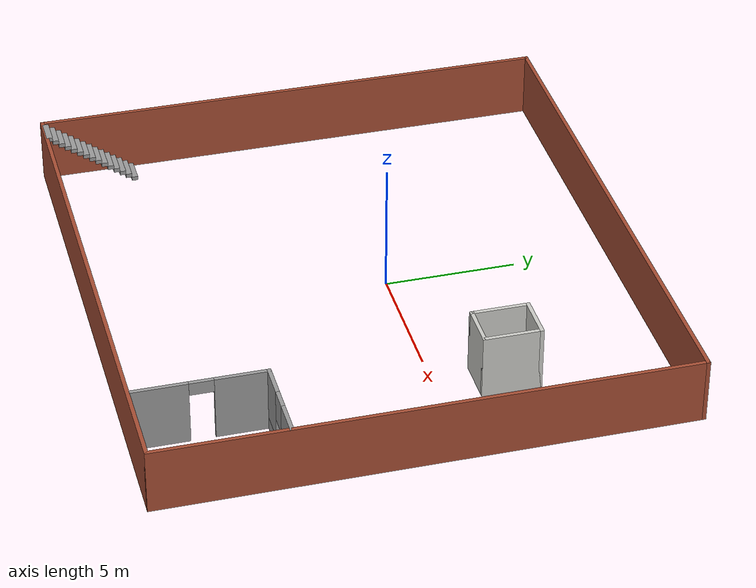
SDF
<?xml version='1.0'?>
<sdf version='1.6'>
  <model name='kevin_2'>
    <pose frame=''>0.096778 -1.24129 0 0 -0 0</pose>
    <link name='Stairs_1'>
      <visual name='Stairs_1_Visual_0'>
        <pose frame=''>-9.91319 -6.55547 0.083333 0 -0 0</pose>
        <geometry>
          <box>
            <size>1 0.233333 0.166667</size>
          </box>
        </geometry>
        <material>
          <script>
            <uri>file://media/materials/scripts/gazebo.material</uri>
            <name>Gazebo/Grey</name>
          </script>
          <ambient>1 1 1 1</ambient>
        </material>
        <meta>
          <layer>0</layer>
        </meta>
      </visual>
      <collision name='Stairs_1_Collision_0'>
        <geometry>
          <box>
            <size>1 0.233333 0.166667</size>
          </box>
        </geometry>
        <pose frame=''>-9.91319 -6.55547 0.083333 0 -0 0</pose>
      </collision>
      <visual name='Stairs_1_Visual_1'>
        <pose frame=''>-9.91319 -6.78881 0.25 0 -0 0</pose>
        <geometry>
          <box>
            <size>1 0.233333 0.166667</size>
          </box>
        </geometry>
        <material>
          <script>
            <uri>file://media/materials/scripts/gazebo.material</uri>
            <name>Gazebo/Grey</name>
          </script>
          <ambient>1 1 1 1</ambient>
        </material>
        <meta>
          <layer>0</layer>
        </meta>
      </visual>
      <collision name='Stairs_1_Collision_1'>
        <geometry>
          <box>
            <size>1 0.233333 0.166667</size>
          </box>
        </geometry>
        <pose frame=''>-9.91319 -6.78881 0.25 0 -0 0</pose>
      </collision>
      <visual name='Stairs_1_Visual_2'>
        <pose frame=''>-9.91319 -7.02214 0.416667 0 -0 0</pose>
        <geometry>
          <box>
            <size>1 0.233333 0.166667</size>
          </box>
        </geometry>
        <material>
          <script>
            <uri>file://media/materials/scripts/gazebo.material</uri>
            <name>Gazebo/Grey</name>
          </script>
          <ambient>1 1 1 1</ambient>
        </material>
        <meta>
          <layer>0</layer>
        </meta>
      </visual>
      <collision name='Stairs_1_Collision_2'>
        <geometry>
          <box>
            <size>1 0.233333 0.166667</size>
          </box>
        </geometry>
        <pose frame=''>-9.91319 -7.02214 0.416667 0 -0 0</pose>
      </collision>
      <visual name='Stairs_1_Visual_3'>
        <pose frame=''>-9.91319 -7.25547 0.583333 0 -0 0</pose>
        <geometry>
          <box>
            <size>1 0.233333 0.166667</size>
          </box>
        </geometry>
        <material>
          <script>
            <uri>file://media/materials/scripts/gazebo.material</uri>
            <name>Gazebo/Grey</name>
          </script>
          <ambient>1 1 1 1</ambient>
        </material>
        <meta>
          <layer>0</layer>
        </meta>
      </visual>
      <collision name='Stairs_1_Collision_3'>
        <geometry>
          <box>
            <size>1 0.233333 0.166667</size>
          </box>
        </geometry>
        <pose frame=''>-9.91319 -7.25547 0.583333 0 -0 0</pose>
      </collision>
      <visual name='Stairs_1_Visual_4'>
        <pose frame=''>-9.91319 -7.48881 0.75 0 -0 0</pose>
        <geometry>
          <box>
            <size>1 0.233333 0.166667</size>
          </box>
        </geometry>
        <material>
          <script>
            <uri>file://media/materials/scripts/gazebo.material</uri>
            <name>Gazebo/Grey</name>
          </script>
          <ambient>1 1 1 1</ambient>
        </material>
        <meta>
          <layer>0</layer>
        </meta>
      </visual>
      <collision name='Stairs_1_Collision_4'>
        <geometry>
          <box>
            <size>1 0.233333 0.166667</size>
          </box>
        </geometry>
        <pose frame=''>-9.91319 -7.48881 0.75 0 -0 0</pose>
      </collision>
      <visual name='Stairs_1_Visual_5'>
        <pose frame=''>-9.91319 -7.72214 0.916667 0 -0 0</pose>
        <geometry>
          <box>
            <size>1 0.233333 0.166667</size>
          </box>
        </geometry>
        <material>
          <script>
            <uri>file://media/materials/scripts/gazebo.material</uri>
            <name>Gazebo/Grey</name>
          </script>
          <ambient>1 1 1 1</ambient>
        </material>
        <meta>
          <layer>0</layer>
        </meta>
      </visual>
      <collision name='Stairs_1_Collision_5'>
        <geometry>
          <box>
            <size>1 0.233333 0.166667</size>
          </box>
        </geometry>
        <pose frame=''>-9.91319 -7.72214 0.916667 0 -0 0</pose>
      </collision>
      <visual name='Stairs_1_Visual_6'>
        <pose frame=''>-9.91319 -7.95547 1.08333 0 -0 0</pose>
        <geometry>
          <box>
            <size>1 0.233333 0.166667</size>
          </box>
        </geometry>
        <material>
          <script>
            <uri>file://media/materials/scripts/gazebo.material</uri>
            <name>Gazebo/Grey</name>
          </script>
          <ambient>1 1 1 1</ambient>
        </material>
        <meta>
          <layer>0</layer>
        </meta>
      </visual>
      <collision name='Stairs_1_Collision_6'>
        <geometry>
          <box>
            <size>1 0.233333 0.166667</size>
          </box>
        </geometry>
        <pose frame=''>-9.91319 -7.95547 1.08333 0 -0 0</pose>
      </collision>
      <visual name='Stairs_1_Visual_7'>
        <pose frame=''>-9.91319 -8.18881 1.25 0 -0 0</pose>
        <geometry>
          <box>
            <size>1 0.233333 0.166667</size>
          </box>
        </geometry>
        <material>
          <script>
            <uri>file://media/materials/scripts/gazebo.material</uri>
            <name>Gazebo/Grey</name>
          </script>
          <ambient>1 1 1 1</ambient>
        </material>
        <meta>
          <layer>0</layer>
        </meta>
      </visual>
      <collision name='Stairs_1_Collision_7'>
        <geometry>
          <box>
            <size>1 0.233333 0.166667</size>
          </box>
        </geometry>
        <pose frame=''>-9.91319 -8.18881 1.25 0 -0 0</pose>
      </collision>
      <visual name='Stairs_1_Visual_8'>
        <pose frame=''>-9.91319 -8.42214 1.41667 0 -0 0</pose>
        <geometry>
          <box>
            <size>1 0.233333 0.166667</size>
          </box>
        </geometry>
        <material>
          <script>
            <uri>file://media/materials/scripts/gazebo.material</uri>
            <name>Gazebo/Grey</name>
          </script>
          <ambient>1 1 1 1</ambient>
        </material>
        <meta>
          <layer>0</layer>
        </meta>
      </visual>
      <collision name='Stairs_1_Collision_8'>
        <geometry>
          <box>
            <size>1 0.233333 0.166667</size>
          </box>
        </geometry>
        <pose frame=''>-9.91319 -8.42214 1.41667 0 -0 0</pose>
      </collision>
      <visual name='Stairs_1_Visual_9'>
        <pose frame=''>-9.91319 -8.65547 1.58333 0 -0 0</pose>
        <geometry>
          <box>
            <size>1 0.233333 0.166667</size>
          </box>
        </geometry>
        <material>
          <script>
            <uri>file://media/materials/scripts/gazebo.material</uri>
            <name>Gazebo/Grey</name>
          </script>
          <ambient>1 1 1 1</ambient>
        </material>
        <meta>
          <layer>0</layer>
        </meta>
      </visual>
      <collision name='Stairs_1_Collision_9'>
        <geometry>
          <box>
            <size>1 0.233333 0.166667</size>
          </box>
        </geometry>
        <pose frame=''>-9.91319 -8.65547 1.58333 0 -0 0</pose>
      </collision>
      <visual name='Stairs_1_Visual_10'>
        <pose frame=''>-9.91319 -8.88881 1.75 0 -0 0</pose>
        <geometry>
          <box>
            <size>1 0.233333 0.166667</size>
          </box>
        </geometry>
        <material>
          <script>
            <uri>file://media/materials/scripts/gazebo.material</uri>
            <name>Gazebo/Grey</name>
          </script>
          <ambient>1 1 1 1</ambient>
        </material>
        <meta>
          <layer>0</layer>
        </meta>
      </visual>
      <collision name='Stairs_1_Collision_10'>
        <geometry>
          <box>
            <size>1 0.233333 0.166667</size>
          </box>
        </geometry>
        <pose frame=''>-9.91319 -8.88881 1.75 0 -0 0</pose>
      </collision>
      <visual name='Stairs_1_Visual_11'>
        <pose frame=''>-9.91319 -9.12214 1.91667 0 -0 0</pose>
        <geometry>
          <box>
            <size>1 0.233333 0.166667</size>
          </box>
        </geometry>
        <material>
          <script>
            <uri>file://media/materials/scripts/gazebo.material</uri>
            <name>Gazebo/Grey</name>
          </script>
          <ambient>1 1 1 1</ambient>
        </material>
        <meta>
          <layer>0</layer>
        </meta>
      </visual>
      <collision name='Stairs_1_Collision_11'>
        <geometry>
          <box>
            <size>1 0.233333 0.166667</size>
          </box>
        </geometry>
        <pose frame=''>-9.91319 -9.12214 1.91667 0 -0 0</pose>
      </collision>
      <visual name='Stairs_1_Visual_12'>
        <pose frame=''>-9.91319 -9.35547 2.08333 0 -0 0</pose>
        <geometry>
          <box>
            <size>1 0.233333 0.166667</size>
          </box>
        </geometry>
        <material>
          <script>
            <uri>file://media/materials/scripts/gazebo.material</uri>
            <name>Gazebo/Grey</name>
          </script>
          <ambient>1 1 1 1</ambient>
        </material>
        <meta>
          <layer>0</layer>
        </meta>
      </visual>
      <collision name='Stairs_1_Collision_12'>
        <geometry>
          <box>
            <size>1 0.233333 0.166667</size>
          </box>
        </geometry>
        <pose frame=''>-9.91319 -9.35547 2.08333 0 -0 0</pose>
      </collision>
      <visual name='Stairs_1_Visual_13'>
        <pose frame=''>-9.91319 -9.58881 2.25 0 -0 0</pose>
        <geometry>
          <box>
            <size>1 0.233333 0.166667</size>
          </box>
        </geometry>
        <material>
          <script>
            <uri>file://media/materials/scripts/gazebo.material</uri>
            <name>Gazebo/Grey</name>
          </script>
          <ambient>1 1 1 1</ambient>
        </material>
        <meta>
          <layer>0</layer>
        </meta>
      </visual>
      <collision name='Stairs_1_Collision_13'>
        <geometry>
          <box>
            <size>1 0.233333 0.166667</size>
          </box>
        </geometry>
        <pose frame=''>-9.91319 -9.58881 2.25 0 -0 0</pose>
      </collision>
      <visual name='Stairs_1_Visual_14'>
        <pose frame=''>-9.91319 -9.82214 2.41667 0 -0 0</pose>
        <geometry>
          <box>
            <size>1 0.233333 0.166667</size>
          </box>
        </geometry>
        <material>
          <script>
            <uri>file://media/materials/scripts/gazebo.material</uri>
            <name>Gazebo/Grey</name>
          </script>
          <ambient>1 1 1 1</ambient>
        </material>
        <meta>
          <layer>0</layer>
        </meta>
      </visual>
      <collision name='Stairs_1_Collision_14'>
        <geometry>
          <box>
            <size>1 0.233333 0.166667</size>
          </box>
        </geometry>
        <pose frame=''>-9.91319 -9.82214 2.41667 0 -0 0</pose>
      </collision>
    </link>
    <link name='Wall_11'>
      <collision name='Wall_11_Collision'>
        <geometry>
          <box>
            <size>20 0.15 2.5</size>
          </box>
        </geometry>
        <pose frame=''>0 0 1.25 0 -0 0</pose>
      </collision>
      <visual name='Wall_11_Visual'>
        <pose frame=''>0 0 1.25 0 -0 0</pose>
        <geometry>
          <box>
            <size>20 0.15 2.5</size>
          </box>
        </geometry>
        <material>
          <script>
            <uri>file://media/materials/scripts/gazebo.material</uri>
            <name>Gazebo/Bricks</name>
          </script>
          <ambient>1 1 1 1</ambient>
        </material>
        <meta>
          <layer>0</layer>
        </meta>
      </visual>
      <pose frame=''>-10.55 0 0 0 0 -1.5708</pose>
    </link>
    <link name='Wall_12'>
      <collision name='Wall_12_Collision'>
        <geometry>
          <box>
            <size>21.25 0.15 2.5</size>
          </box>
        </geometry>
        <pose frame=''>0 0 1.25 0 -0 0</pose>
      </collision>
      <visual name='Wall_12_Visual'>
        <pose frame=''>0 0 1.25 0 -0 0</pose>
        <geometry>
          <box>
            <size>21.25 0.15 2.5</size>
          </box>
        </geometry>
        <material>
          <script>
            <uri>file://media/materials/scripts/gazebo.material</uri>
            <name>Gazebo/Bricks</name>
          </script>
          <ambient>1 1 1 1</ambient>
        </material>
        <meta>
          <layer>0</layer>
        </meta>
      </visual>
      <pose frame=''>0 -9.925 0 0 -0 0</pose>
    </link>
    <link name='Wall_13'>
      <collision name='Wall_13_Collision'>
        <geometry>
          <box>
            <size>20 0.15 2.5</size>
          </box>
        </geometry>
        <pose frame=''>0 0 1.25 0 -0 0</pose>
      </collision>
      <visual name='Wall_13_Visual'>
        <pose frame=''>0 0 1.25 0 -0 0</pose>
        <geometry>
          <box>
            <size>20 0.15 2.5</size>
          </box>
        </geometry>
        <material>
          <script>
            <uri>file://media/materials/scripts/gazebo.material</uri>
            <name>Gazebo/Bricks</name>
          </script>
          <ambient>1 1 1 1</ambient>
        </material>
        <meta>
          <layer>0</layer>
        </meta>
      </visual>
      <pose frame=''>10.55 0 0 0 -0 1.5708</pose>
    </link>
    <link name='Wall_14'>
      <collision name='Wall_14_Collision'>
        <geometry>
          <box>
            <size>21.25 0.15 2.5</size>
          </box>
        </geometry>
        <pose frame=''>0 0 1.25 0 -0 0</pose>
      </collision>
      <visual name='Wall_14_Visual'>
        <pose frame=''>0 0 1.25 0 -0 0</pose>
        <geometry>
          <box>
            <size>21.25 0.15 2.5</size>
          </box>
        </geometry>
        <material>
          <script>
            <uri>file://media/materials/scripts/gazebo.material</uri>
            <name>Gazebo/Bricks</name>
          </script>
          <ambient>1 1 1 1</ambient>
        </material>
        <meta>
          <layer>0</layer>
        </meta>
      </visual>
      <pose frame=''>0 9.925 0 0 -0 3.14159</pose>
    </link>
    <link name='Wall_16'>
      <pose frame=''>8.8606 -4.93398 0 0 -0 3.14159</pose>
      <visual name='Wall_16_Visual_0'>
        <pose frame=''>-1.06341 0 1.25 0 -0 0</pose>
        <geometry>
          <box>
            <size>1.37317 0.15 2.5</size>
          </box>
        </geometry>
        <material>
          <script>
            <uri>file://media/materials/scripts/gazebo.material</uri>
            <name>Gazebo/Grey</name>
          </script>
          <ambient>1 1 1 1</ambient>
        </material>
        <meta>
          <layer>0</layer>
        </meta>
      </visual>
      <collision name='Wall_16_Collision_0'>
        <geometry>
          <box>
            <size>1.37317 0.15 2.5</size>
          </box>
        </geometry>
        <pose frame=''>-1.06341 0 1.25 0 -0 0</pose>
      </collision>
      <visual name='Wall_16_Visual_1'>
        <pose frame=''>0.686585 0 0.25 0 -0 0</pose>
        <geometry>
          <box>
            <size>2.12683 0.15 0.5</size>
          </box>
        </geometry>
        <material>
          <script>
            <uri>file://media/materials/scripts/gazebo.material</uri>
            <name>Gazebo/Grey</name>
          </script>
          <ambient>1 1 1 1</ambient>
        </material>
        <meta>
          <layer>0</layer>
        </meta>
      </visual>
      <collision name='Wall_16_Collision_1'>
        <geometry>
          <box>
            <size>2.12683 0.15 0.5</size>
          </box>
        </geometry>
        <pose frame=''>0.686585 0 0.25 0 -0 0</pose>
      </collision>
      <visual name='Wall_16_Visual_2'>
        <pose frame=''>1.08658 0 1.5 0 -0 0</pose>
        <geometry>
          <box>
            <size>1.32683 0.15 2</size>
          </box>
        </geometry>
        <material>
          <script>
            <uri>file://media/materials/scripts/gazebo.material</uri>
            <name>Gazebo/Grey</name>
          </script>
          <ambient>1 1 1 1</ambient>
        </material>
        <meta>
          <layer>0</layer>
        </meta>
      </visual>
      <collision name='Wall_16_Collision_2'>
        <geometry>
          <box>
            <size>1.32683 0.15 2</size>
          </box>
        </geometry>
        <pose frame=''>1.08658 0 1.5 0 -0 0</pose>
      </collision>
      <visual name='Wall_16_Visual_3'>
        <pose frame=''>0.02317 0 1.9 0 -0 0</pose>
        <geometry>
          <box>
            <size>0.8 0.15 1.2</size>
          </box>
        </geometry>
        <material>
          <script>
            <uri>file://media/materials/scripts/gazebo.material</uri>
            <name>Gazebo/Grey</name>
          </script>
          <ambient>1 1 1 1</ambient>
        </material>
        <meta>
          <layer>0</layer>
        </meta>
      </visual>
      <collision name='Wall_16_Collision_3'>
        <geometry>
          <box>
            <size>0.8 0.15 1.2</size>
          </box>
        </geometry>
        <pose frame=''>0.02317 0 1.9 0 -0 0</pose>
      </collision>
    </link>
    <link name='Wall_17'>
      <pose frame=''>7.1856 -7.35898 0 0 0 -1.5708</pose>
      <visual name='Wall_17_Visual_0'>
        <pose frame=''>-1.48463 0 1.25 0 -0 0</pose>
        <geometry>
          <box>
            <size>2.03074 0.15 2.5</size>
          </box>
        </geometry>
        <material>
          <script>
            <uri>file://media/materials/scripts/gazebo.material</uri>
            <name>Gazebo/Grey</name>
          </script>
          <ambient>1 1 1 1</ambient>
        </material>
        <meta>
          <layer>0</layer>
        </meta>
      </visual>
      <collision name='Wall_17_Collision_0'>
        <geometry>
          <box>
            <size>2.03074 0.15 2.5</size>
          </box>
        </geometry>
        <pose frame=''>-1.48463 0 1.25 0 -0 0</pose>
      </collision>
      <visual name='Wall_17_Visual_1'>
        <pose frame=''>1.46537 0 1.25 0 -0 0</pose>
        <geometry>
          <box>
            <size>2.06926 0.15 2.5</size>
          </box>
        </geometry>
        <material>
          <script>
            <uri>file://media/materials/scripts/gazebo.material</uri>
            <name>Gazebo/Grey</name>
          </script>
          <ambient>1 1 1 1</ambient>
        </material>
        <meta>
          <layer>0</layer>
        </meta>
      </visual>
      <collision name='Wall_17_Collision_1'>
        <geometry>
          <box>
            <size>2.06926 0.15 2.5</size>
          </box>
        </geometry>
        <pose frame=''>1.46537 0 1.25 0 -0 0</pose>
      </collision>
      <visual name='Wall_17_Visual_2'>
        <pose frame=''>-0.01926 0 2.25 0 -0 0</pose>
        <geometry>
          <box>
            <size>0.9 0.15 0.5</size>
          </box>
        </geometry>
        <material>
          <script>
            <uri>file://media/materials/scripts/gazebo.material</uri>
            <name>Gazebo/Grey</name>
          </script>
          <ambient>1 1 1 1</ambient>
        </material>
        <meta>
          <layer>0</layer>
        </meta>
      </visual>
      <collision name='Wall_17_Collision_2'>
        <geometry>
          <box>
            <size>0.9 0.15 0.5</size>
          </box>
        </geometry>
        <pose frame=''>-0.01926 0 2.25 0 -0 0</pose>
      </collision>
    </link>
    <link name='Wall_22'>
      <collision name='Wall_22_Collision'>
        <geometry>
          <box>
            <size>2.25 0.15 2.5</size>
          </box>
        </geometry>
        <pose frame=''>0 0 1.25 0 -0 0</pose>
      </collision>
      <visual name='Wall_22_Visual'>
        <pose frame=''>0 0 1.25 0 -0 0</pose>
        <geometry>
          <box>
            <size>2.25 0.15 2.5</size>
          </box>
        </geometry>
        <material>
          <script>
            <uri>file://media/materials/scripts/gazebo.material</uri>
            <name>Gazebo/CeilingTiled</name>
          </script>
          <ambient>1 1 1 1</ambient>
        </material>
        <meta>
          <layer>0</layer>
        </meta>
      </visual>
      <pose frame=''>5.72412 3.85125 0 0 0 -1.5708</pose>
    </link>
    <link name='Wall_23'>
      <collision name='Wall_23_Collision'>
        <geometry>
          <box>
            <size>1.75 0.15 2.5</size>
          </box>
        </geometry>
        <pose frame=''>0 0 1.25 0 -0 0</pose>
      </collision>
      <visual name='Wall_23_Visual'>
        <pose frame=''>0 0 1.25 0 -0 0</pose>
        <geometry>
          <box>
            <size>1.75 0.15 2.5</size>
          </box>
        </geometry>
        <material>
          <script>
            <uri>file://media/materials/scripts/gazebo.material</uri>
            <name>Gazebo/CeilingTiled</name>
          </script>
          <ambient>1 1 1 1</ambient>
        </material>
        <meta>
          <layer>0</layer>
        </meta>
      </visual>
      <pose frame=''>6.52412 2.80125 0 0 -0 0</pose>
    </link>
    <link name='Wall_24'>
      <collision name='Wall_24_Collision'>
        <geometry>
          <box>
            <size>2.25 0.15 2.5</size>
          </box>
        </geometry>
        <pose frame=''>0 0 1.25 0 -0 0</pose>
      </collision>
      <visual name='Wall_24_Visual'>
        <pose frame=''>0 0 1.25 0 -0 0</pose>
        <geometry>
          <box>
            <size>2.25 0.15 2.5</size>
          </box>
        </geometry>
        <material>
          <script>
            <uri>file://media/materials/scripts/gazebo.material</uri>
            <name>Gazebo/CeilingTiled</name>
          </script>
          <ambient>1 1 1 1</ambient>
        </material>
        <meta>
          <layer>0</layer>
        </meta>
      </visual>
      <pose frame=''>7.32412 3.85125 0 0 -0 1.5708</pose>
    </link>
    <link name='Wall_25'>
      <collision name='Wall_25_Collision'>
        <geometry>
          <box>
            <size>1.75 0.15 2.5</size>
          </box>
        </geometry>
        <pose frame=''>0 0 1.25 0 -0 0</pose>
      </collision>
      <visual name='Wall_25_Visual'>
        <pose frame=''>0 0 1.25 0 -0 0</pose>
        <geometry>
          <box>
            <size>1.75 0.15 2.5</size>
          </box>
        </geometry>
        <material>
          <script>
            <uri>file://media/materials/scripts/gazebo.material</uri>
            <name>Gazebo/CeilingTiled</name>
          </script>
          <ambient>1 1 1 1</ambient>
        </material>
        <meta>
          <layer>0</layer>
        </meta>
      </visual>
      <pose frame=''>6.52412 4.90125 0 0 -0 3.14159</pose>
    </link>
    <static>1</static>
  </model>
</sdf>
